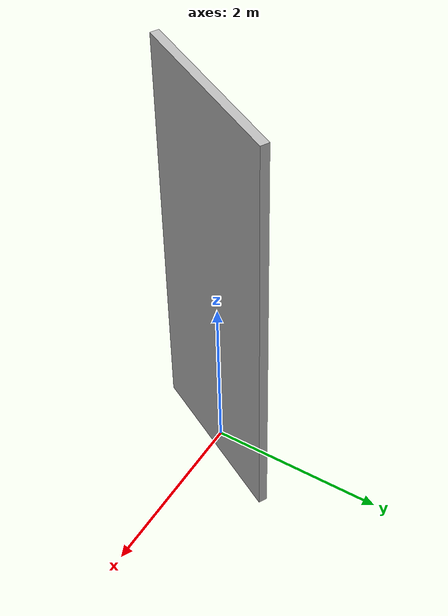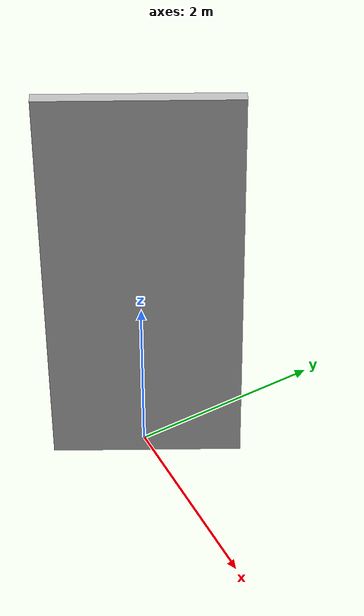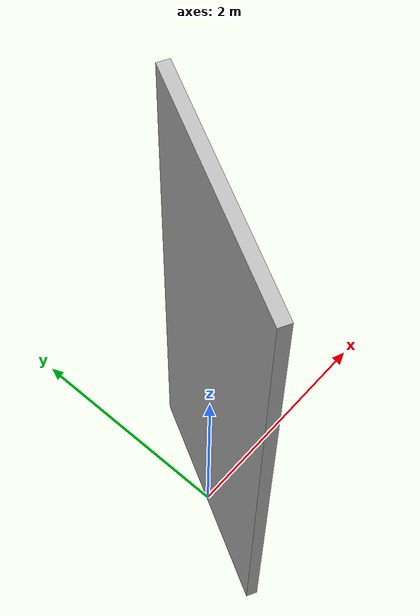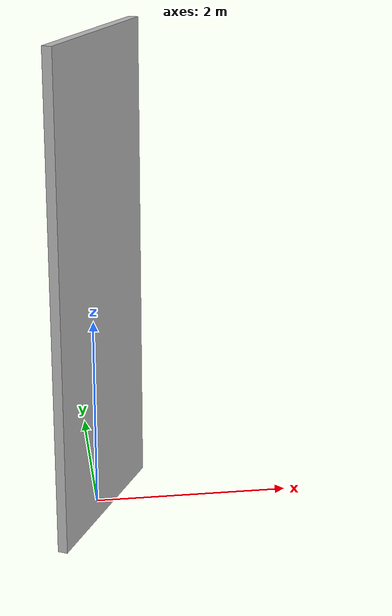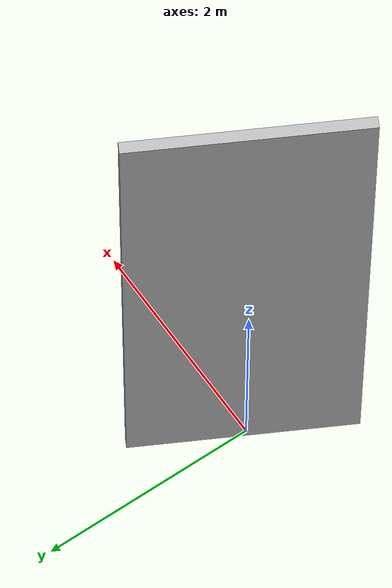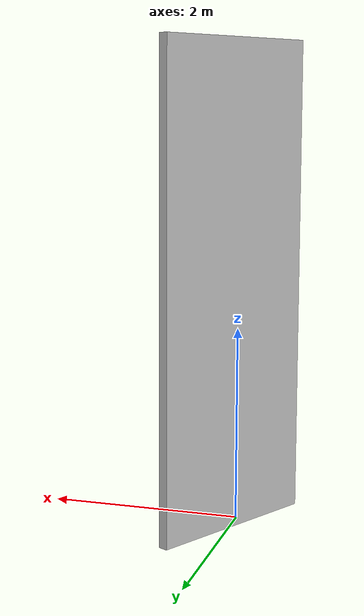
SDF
<?xml version="1.0" ?>
<sdf version="1.6">
  <model name="trafficsign">
    <static>true</static>
    <link name="link">
    <pose>0 0 0 1.5708 0 3.1416</pose>
      <visual name="visual">
        <geometry>
          <mesh>
            <uri>model://trafficsign/meshes/trafficsign.obj</uri>
            <scale>1 1 1</scale>
          </mesh>
        </geometry>
      </visual>
      <collision name="collision">
        <geometry>
          <mesh>
            <uri>model://trafficsign/meshes/trafficsign.obj</uri>
            <scale>1 1 1</scale>
          </mesh>
        </geometry>
      </collision>
    </link>
  </model>
</sdf>
